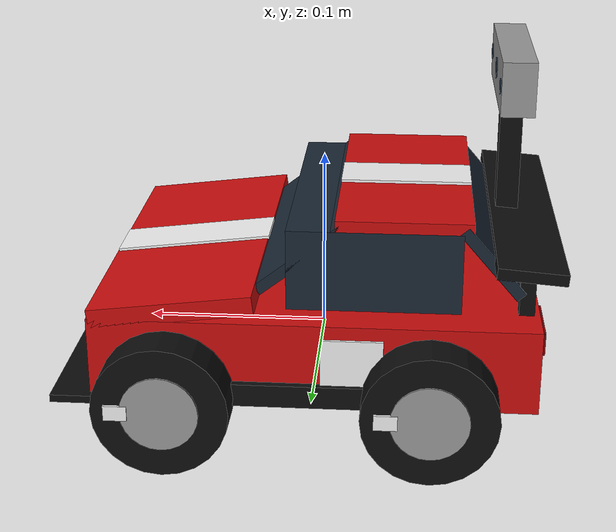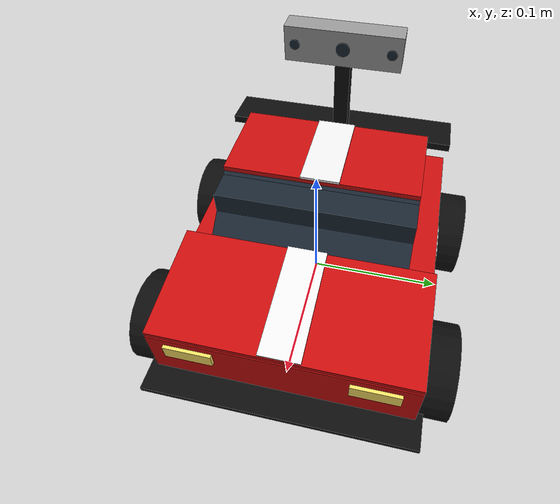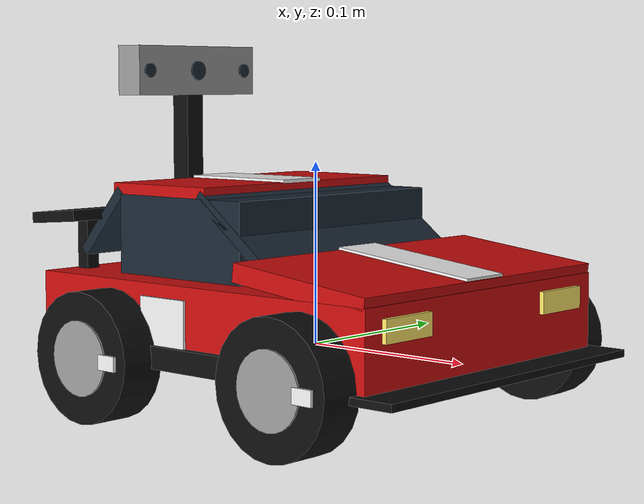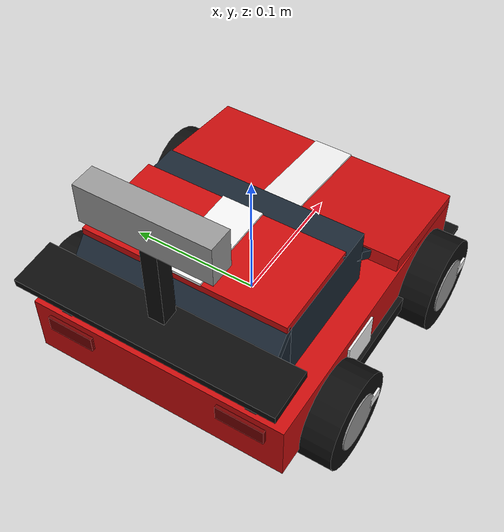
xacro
<?xml version="1.0"?>
<robot name="race_robot" xmlns:xacro="http://www.ros.org/wiki/xacro">

  <xacro:arg name="cam_x" default="-0.10"/>
  <xacro:arg name="cam_y" default="0.0"/>
  <xacro:arg name="cam_z" default="0.185"/>
  <xacro:arg name="cam_pitch" default="0.0"/>
  <xacro:arg name="cam_yaw" default="0.0"/>

  <xacro:property name="wheel_r" value="0.035"/>
  <xacro:property name="rear_x" value="-0.06"/>       <!-- rear (drive) axle -->
  <xacro:property name="front_x" value="0.075"/>      <!-- front (steered) axle -->
  <xacro:property name="track" value="0.21"/>         <!-- wheel centers, left to right -->
  <xacro:property name="kingpin" value="0.18"/>       <!-- steering pivots, inboard of the tires -->

  <!-- ASSUMED until measured on the real robot -->
  <xacro:property name="steer_limit" value="0.5236"/> <!-- 30 deg servo lock, inner wheel -->
  <xacro:property name="max_speed" value="0.8"/>
  <xacro:property name="max_accel" value="1.5"/>

  <xacro:property name="cam_x" value="$(arg cam_x)"/>
  <xacro:property name="cam_y" value="$(arg cam_y)"/>
  <xacro:property name="cam_z_base" value="${$(arg cam_z) - wheel_r}"/>
  <xacro:property name="cam_pitch" value="${$(arg cam_pitch) * pi / 180}"/>
  <xacro:property name="cam_yaw" value="${$(arg cam_yaw) * pi / 180}"/>
  <xacro:property name="deck_top" value="0.049"/>     <!-- rear deck, base frame -->

  <!-- ===== Materials ===== -->
  <material name="blue"><color rgba="0.1 0.3 0.8 1"/></material>
  <material name="black"><color rgba="0.05 0.05 0.05 1"/></material>
  <material name="grey"><color rgba="0.6 0.6 0.6 1"/></material>
  <material name="red"><color rgba="0.8 0.05 0.05 1"/></material>
  <material name="glass"><color rgba="0.1 0.15 0.2 1"/></material>
  <material name="white"><color rgba="0.95 0.95 0.95 1"/></material>
  <material name="headlight"><color rgba="1.0 0.9 0.4 1"/></material>
  <material name="taillight"><color rgba="0.45 0.0 0.0 1"/></material>

  <!-- ===== Chassis ===== -->
  <!-- Stock-car styling: visuals only. -->
  <link name="base_link">
    <!-- Lower body -->
    <visual>
      <origin xyz="0 0 0.0175"/>
      <geometry><box size="0.23 0.19 0.045"/></geometry>
      <material name="red"/>
    </visual>
    <!-- Hood (slopes down toward nose) -->
    <visual>
      <origin xyz="0.072 0 0.045" rpy="0 0.12 0"/>
      <geometry><box size="0.085 0.19 0.01"/></geometry>
      <material name="red"/>
    </visual>
    <!-- Greenhouse, windshield, rear window, roof -->
    <visual>
      <origin xyz="-0.03 0 0.0615"/>
      <geometry><box size="0.09 0.15 0.043"/></geometry>
      <material name="glass"/>
    </visual>
    <visual>
      <origin xyz="0.0075 0 0.0675" rpy="0 0.66 0"/>
      <geometry><box size="0.057 0.15 0.006"/></geometry>
      <material name="glass"/>
    </visual>
    <visual>
      <origin xyz="-0.09 0 0.0675" rpy="0 -0.86 0"/>
      <geometry><box size="0.046 0.15 0.006"/></geometry>
      <material name="glass"/>
    </visual>
    <visual>
      <origin xyz="-0.045 0 0.086"/>
      <geometry><box size="0.07 0.15 0.006"/></geometry>
      <material name="red"/>
    </visual>
    <!-- Racing stripes (hood, roof) -->
    <visual>
      <origin xyz="0.072 0 0.0505" rpy="0 0.12 0"/>
      <geometry><box size="0.085 0.03 0.002"/></geometry>
      <material name="white"/>
    </visual>
    <visual>
      <origin xyz="-0.045 0 0.0895"/>
      <geometry><box size="0.07 0.03 0.002"/></geometry>
      <material name="white"/>
    </visual>
    <!-- Front splitter, side skirts -->
    <visual>
      <origin xyz="0.12 0 -0.003"/>
      <geometry><box size="0.03 0.2 0.004"/></geometry>
      <material name="black"/>
    </visual>
    <visual>
      <origin xyz="0 0.097 0.002"/>
      <geometry><box size="0.12 0.004 0.012"/></geometry>
      <material name="black"/>
    </visual>
    <visual>
      <origin xyz="0 -0.097 0.002"/>
      <geometry><box size="0.12 0.004 0.012"/></geometry>
      <material name="black"/>
    </visual>
    <!-- Rear spoiler (low, deck mounted) -->
    <visual>
      <origin xyz="-0.108 0.07 0.052"/>
      <geometry><box size="0.008 0.008 0.03"/></geometry>
      <material name="black"/>
    </visual>
    <visual>
      <origin xyz="-0.108 -0.07 0.052"/>
      <geometry><box size="0.008 0.008 0.03"/></geometry>
      <material name="black"/>
    </visual>
    <visual>
      <origin xyz="-0.108 0 0.07" rpy="0 -0.08 0"/>
      <geometry><box size="0.035 0.19 0.006"/></geometry>
      <material name="black"/>
    </visual>
    <!-- Headlights, taillights -->
    <visual>
      <origin xyz="0.1155 0.065 0.028"/>
      <geometry><box size="0.004 0.035 0.012"/></geometry>
      <material name="headlight"/>
    </visual>
    <visual>
      <origin xyz="0.1155 -0.065 0.028"/>
      <geometry><box size="0.004 0.035 0.012"/></geometry>
      <material name="headlight"/>
    </visual>
    <visual>
      <origin xyz="-0.1155 0.065 0.028"/>
      <geometry><box size="0.004 0.035 0.012"/></geometry>
      <material name="taillight"/>
    </visual>
    <visual>
      <origin xyz="-0.1155 -0.065 0.028"/>
      <geometry><box size="0.004 0.035 0.012"/></geometry>
      <material name="taillight"/>
    </visual>
    <!-- Door number roundels -->
    <visual>
      <origin xyz="-0.02 0.0955 0.02"/>
      <geometry><box size="0.032 0.002 0.026"/></geometry>
      <material name="white"/>
    </visual>
    <visual>
      <origin xyz="-0.02 -0.0955 0.02"/>
      <geometry><box size="0.032 0.002 0.026"/></geometry>
      <material name="white"/>
    </visual>
    <!-- Camera mast: from the rear deck up to the camera -->
    <xacro:if value="${cam_z_base - 0.014 > deck_top}">
      <visual>
        <origin xyz="${cam_x} ${cam_y} ${(deck_top + cam_z_base - 0.014) / 2}"/>
        <geometry><box size="0.012 0.012 ${cam_z_base - 0.014 - deck_top}"/></geometry>
        <material name="black"/>
      </visual>
      <visual>
        <origin xyz="${cam_x} ${cam_y} ${deck_top + 0.003}"/>
        <geometry><box size="0.03 0.03 0.006"/></geometry>
        <material name="black"/>
      </visual>
    </xacro:if>

    <collision>
      <origin xyz="0 0 0.02"/>
      <geometry><box size="0.22 0.18 0.06"/></geometry>
    </collision>
    <inertial>
      <origin xyz="0 0 0.02"/>
      <mass value="1.5"/>
      <inertia ixx="0.0045" ixy="0" ixz="0" iyy="0.0065" iyz="0" izz="0.0101"/>
    </inertial>
  </link>

  <!-- ===== Wheels (old look: black tire, grey hub, white marker) ===== -->
  <xacro:macro name="wheel_link" params="name">
    <link name="${name}">
      <visual>
        <origin rpy="1.5708 0 0"/>
        <geometry><cylinder radius="0.035" length="0.025"/></geometry>
        <material name="black"/>
      </visual>
      <visual>
        <origin rpy="1.5708 0 0"/>
        <geometry><cylinder radius="0.02" length="0.027"/></geometry>
        <material name="grey"/>
      </visual>
      <visual>
        <origin xyz="0.022 0 0"/>
        <geometry><box size="0.012 0.028 0.008"/></geometry>
        <material name="white"/>
      </visual>
      <collision>
        <origin rpy="1.5708 0 0"/>
        <geometry><cylinder radius="0.035" length="0.025"/></geometry>
      </collision>
      <inertial>
        <mass value="0.1"/>
        <inertia ixx="3.6e-5" ixy="0" ixz="0" iyy="6.1e-5" iyz="0" izz="3.6e-5"/>
      </inertial>
    </link>
    <gazebo reference="${name}">
      <mu1>1.0</mu1>
      <mu2>1.0</mu2>
    </gazebo>
  </xacro:macro>

  <!-- Rear: driven -->
  <xacro:macro name="rear_wheel" params="side s">
    <xacro:wheel_link name="${side}_wheel_link"/>
    <joint name="${side}_wheel_joint" type="continuous">
      <parent link="base_link"/>
      <child link="${side}_wheel_link"/>
      <origin xyz="${rear_x} ${s * track / 2} 0"/>
      <axis xyz="0 1 0"/>
    </joint>
  </xacro:macro>
  <xacro:rear_wheel side="left" s="1"/>
  <xacro:rear_wheel side="right" s="-1"/>

  <!-- Front: steered by the servo (one steering joint per side, as in an
       Ackermann linkage), free rolling. Same spot as the old model's
       front wheels. -->
  <xacro:macro name="front_wheel" params="side s">
    <link name="front_${side}_knuckle">
      <inertial>
        <mass value="0.01"/>
        <inertia ixx="1e-6" ixy="0" ixz="0" iyy="1e-6" iyz="0" izz="1e-6"/>
      </inertial>
    </link>
    <joint name="front_${side}_steer_joint" type="revolute">
      <parent link="base_link"/>
      <child link="front_${side}_knuckle"/>
      <origin xyz="${front_x} ${s * kingpin / 2} 0"/>
      <axis xyz="0 0 1"/>
      <limit lower="${-steer_limit}" upper="${steer_limit}" effort="5" velocity="8"/>
    </joint>
    <xacro:wheel_link name="front_${side}_wheel_link"/>
    <joint name="front_${side}_wheel_joint" type="continuous">
      <parent link="front_${side}_knuckle"/>
      <child link="front_${side}_wheel_link"/>
      <origin xyz="0 ${s * (track - kingpin) / 2} 0"/>
      <axis xyz="0 1 0"/>
    </joint>
  </xacro:macro>
  <xacro:front_wheel side="left" s="1"/>
  <xacro:front_wheel side="right" s="-1"/>

  <!-- ===== Camera: Luxonis OAK-D Lite ===== -->
  <link name="camera_link">
    <visual>
      <geometry><box size="0.0175 0.091 0.028"/></geometry>
      <material name="grey"/>
    </visual>
    <visual>
      <origin xyz="0.0089 0 0" rpy="0 ${pi / 2} 0"/>
      <geometry><cylinder radius="0.0055" length="0.001"/></geometry>
      <material name="glass"/>
    </visual>
    <visual>
      <origin xyz="0.0089 0.0375 0" rpy="0 ${pi / 2} 0"/>
      <geometry><cylinder radius="0.004" length="0.001"/></geometry>
      <material name="glass"/>
    </visual>
    <visual>
      <origin xyz="0.0089 -0.0375 0" rpy="0 ${pi / 2} 0"/>
      <geometry><cylinder radius="0.004" length="0.001"/></geometry>
      <material name="glass"/>
    </visual>
    <collision>
      <geometry><box size="0.0175 0.091 0.028"/></geometry>
    </collision>
    <inertial>
      <mass value="0.061"/>
      <inertia ixx="4.6e-5" ixy="0" ixz="0" iyy="5.6e-6" iyz="0" izz="4.4e-5"/>
    </inertial>
  </link>

  <joint name="camera_joint" type="fixed">
    <parent link="base_link"/>
    <child link="camera_link"/>
    <origin xyz="${cam_x} ${cam_y} ${cam_z_base}" rpy="0 ${cam_pitch} ${cam_yaw}"/>
  </joint>

  <!-- ROS optical frame convention: z forward, x right, y down. -->
  <link name="camera_optical_link"/>
  <joint name="camera_optical_joint" type="fixed">
    <parent link="camera_link"/>
    <child link="camera_optical_link"/>
    <origin rpy="${-pi / 2} 0 ${-pi / 2}"/>
  </joint>

  <link name="imu_link"/>
  <joint name="imu_joint" type="fixed">
    <parent link="camera_link"/>
    <child link="imu_link"/>
  </joint>

  <!-- ===== Gazebo (Harmonic) ===== -->
  <gazebo reference="camera_link">
    <sensor name="oakd" type="rgbd_camera">
      <pose>0.0089 0 0 0 0 0</pose>
      <always_on>true</always_on>
      <update_rate>30</update_rate>
      <visualize>true</visualize>
      <topic>camera</topic>
      <gz_frame_id>camera_optical_link</gz_frame_id>
      <camera>
        <camera_info_topic>camera/camera_info</camera_info_topic>
        <horizontal_fov>1.2043</horizontal_fov>
        <image>
          <width>640</width>
          <height>480</height>
          <format>R8G8B8</format>
        </image>
        <clip>
          <near>0.02</near>
          <far>20.0</far>
        </clip>
        <depth_camera>
          <clip>
            <near>0.20</near>
            <far>12.0</far>
          </clip>
        </depth_camera>
        <noise>
          <type>gaussian</type>
          <mean>0.0</mean>
          <stddev>0.007</stddev>
        </noise>
      </camera>
    </sensor>
  </gazebo>

  <gazebo reference="imu_link">
    <sensor name="oakd_imu" type="imu">
      <always_on>true</always_on>
      <update_rate>200</update_rate>
      <topic>camera/imu</topic>
      <gz_frame_id>imu_link</gz_frame_id>
      <imu>
        <enable_orientation>false</enable_orientation>
        <angular_velocity>
          <x><noise type="gaussian"><mean>0</mean><stddev>1.73e-3</stddev><bias_mean>0</bias_mean><bias_stddev>5e-4</bias_stddev></noise></x>
          <y><noise type="gaussian"><mean>0</mean><stddev>1.73e-3</stddev><bias_mean>0</bias_mean><bias_stddev>5e-4</bias_stddev></noise></y>
          <z><noise type="gaussian"><mean>0</mean><stddev>1.73e-3</stddev><bias_mean>0</bias_mean><bias_stddev>5e-4</bias_stddev></noise></z>
        </angular_velocity>
        <linear_acceleration>
          <x><noise type="gaussian"><mean>0</mean><stddev>0.022</stddev><bias_mean>0</bias_mean><bias_stddev>0.02</bias_stddev></noise></x>
          <y><noise type="gaussian"><mean>0</mean><stddev>0.022</stddev><bias_mean>0</bias_mean><bias_stddev>0.02</bias_stddev></noise></y>
          <z><noise type="gaussian"><mean>0</mean><stddev>0.022</stddev><bias_mean>0</bias_mean><bias_stddev>0.02</bias_stddev></noise></z>
        </linear_acceleration>
      </imu>
    </sensor>
  </gazebo>

  <gazebo>
    <plugin filename="gz-sim-ackermann-steering-system" name="gz::sim::systems::AckermannSteering">
      <left_joint>left_wheel_joint</left_joint>
      <right_joint>right_wheel_joint</right_joint>
      <left_steering_joint>front_left_steer_joint</left_steering_joint>
      <right_steering_joint>front_right_steer_joint</right_steering_joint>
      <kingpin_width>${kingpin}</kingpin_width>
      <steering_limit>${steer_limit}</steering_limit>
      <wheel_base>${front_x - rear_x}</wheel_base>
      <wheel_separation>${track}</wheel_separation>
      <wheel_radius>${wheel_r}</wheel_radius>
      <min_velocity>${-max_speed}</min_velocity>
      <max_velocity>${max_speed}</max_velocity>
      <min_acceleration>-3.0</min_acceleration>
      <max_acceleration>${max_accel}</max_acceleration>
      <steer_p_gain>10.0</steer_p_gain>
      <topic>cmd_vel</topic>
      <odom_topic>odom</odom_topic>
      <tf_topic>tf</tf_topic>
      <frame_id>odom</frame_id>
      <child_frame_id>base_link</child_frame_id>
      <odom_publish_frequency>30</odom_publish_frequency>
    </plugin>

    <plugin filename="gz-sim-joint-state-publisher-system" name="gz::sim::systems::JointStatePublisher">
      <topic>joint_states</topic>
    </plugin>
  </gazebo>

</robot>
